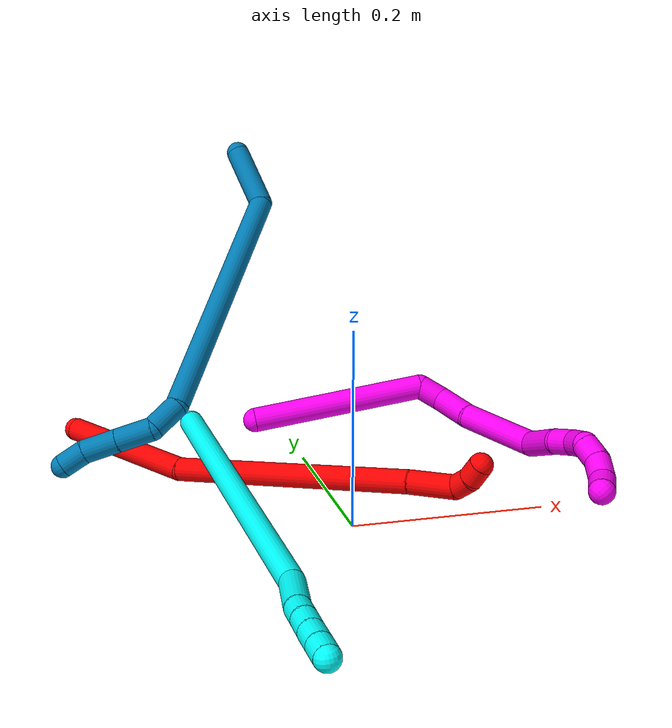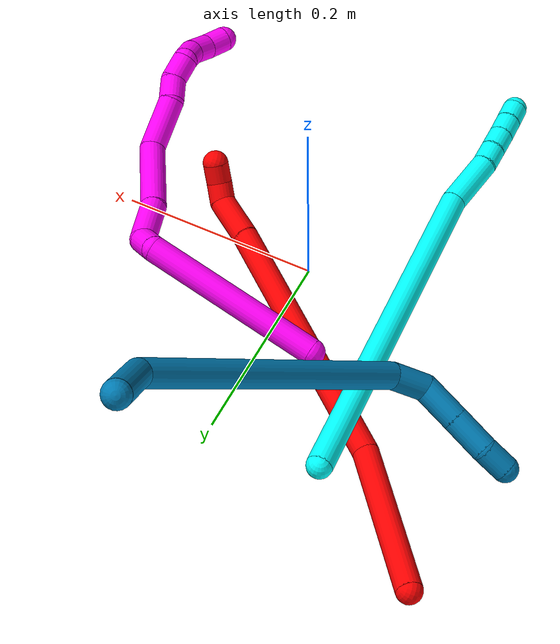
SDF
<sdf version="1.7">
 <world name="default">
  <model name="2">
   <static>0</static>
   <link name="2">
    <collision name="collision-cylinder-e_1_1_4">
     <pose>0.017638 -0.072492 -0.015731 1.78449 0.233444 0.288835</pose>
     <geometry><cylinder><radius>0.0125</radius><length>0.152494</length></cylinder></geometry>
     <surface>
      <friction><ode><mu>1.16</mu><mu2>1.16</mu2><slip1>0</slip1><slip2>0</slip2></ode></friction>
      <contact><ode><kp>1e+06</kp><kd>1</kd><max_vel>0</max_vel><min_depth>0.001</min_depth></ode></contact>
     </surface>
    </collision>
    <visual name="visual-cylinder-e_1_1_4">
     <pose>0.017638 -0.072492 -0.015731 1.78449 0.233444 0.288835</pose>
     <geometry><cylinder><radius>0.0125</radius><length>0.152494</length></cylinder></geometry>
     <material><ambient>1 0 0 1</ambient></material>
    </visual>
    <collision name="collision-cylinder-e_2_4_5">
     <pose>0.066744 -0.254284 -0.093523 2.08719 0.245312 0.417342</pose>
     <geometry><cylinder><radius>0.0125</radius><length>0.25914</length></cylinder></geometry>
     <surface>
      <friction><ode><mu>1.16</mu><mu2>1.16</mu2><slip1>0</slip1><slip2>0</slip2></ode></friction>
      <contact><ode><kp>1e+06</kp><kd>1</kd><max_vel>0</max_vel><min_depth>0.001</min_depth></ode></contact>
     </surface>
    </collision>
    <visual name="visual-cylinder-e_2_4_5">
     <pose>0.066744 -0.254284 -0.093523 2.08719 0.245312 0.417342</pose>
     <geometry><cylinder><radius>0.0125</radius><length>0.25914</length></cylinder></geometry>
     <material><ambient>1 0 0 1</ambient></material>
    </visual>
    <collision name="collision-cylinder-e_3_5_6">
     <pose>0.101898 -0.384398 -0.166992 2.07224 0.154128 0.25931</pose>
     <geometry><cylinder><radius>0.0125</radius><length>0.048039</length></cylinder></geometry>
     <surface>
      <friction><ode><mu>1.16</mu><mu2>1.16</mu2><slip1>0</slip1><slip2>0</slip2></ode></friction>
      <contact><ode><kp>1e+06</kp><kd>1</kd><max_vel>0</max_vel><min_depth>0.001</min_depth></ode></contact>
     </surface>
    </collision>
    <visual name="visual-cylinder-e_3_5_6">
     <pose>0.101898 -0.384398 -0.166992 2.07224 0.154128 0.25931</pose>
     <geometry><cylinder><radius>0.0125</radius><length>0.048039</length></cylinder></geometry>
     <material><ambient>1 0 0 1</ambient></material>
    </visual>
    <collision name="collision-cylinder-e_4_6_7">
     <pose>0.112814 -0.410146 -0.183357 2.3583 0.801827 1.59682</pose>
     <geometry><cylinder><radius>0.0125</radius><length>0.020117</length></cylinder></geometry>
     <surface>
      <friction><ode><mu>1.16</mu><mu2>1.16</mu2><slip1>0</slip1><slip2>0</slip2></ode></friction>
      <contact><ode><kp>1e+06</kp><kd>1</kd><max_vel>0</max_vel><min_depth>0.001</min_depth></ode></contact>
     </surface>
    </collision>
    <visual name="visual-cylinder-e_4_6_7">
     <pose>0.112814 -0.410146 -0.183357 2.3583 0.801827 1.59682</pose>
     <geometry><cylinder><radius>0.0125</radius><length>0.020117</length></cylinder></geometry>
     <material><ambient>1 0 0 1</ambient></material>
    </visual>
    <collision name="collision-cylinder-e_5_7_2">
     <pose>0.128045 -0.416772 -0.194248 2.86421 0.913963 2.58837</pose>
     <geometry><cylinder><radius>0.0125</radius><length>0.02021</length></cylinder></geometry>
     <surface>
      <friction><ode><mu>1.16</mu><mu2>1.16</mu2><slip1>0</slip1><slip2>0</slip2></ode></friction>
      <contact><ode><kp>1e+06</kp><kd>1</kd><max_vel>0</max_vel><min_depth>0.001</min_depth></ode></contact>
     </surface>
    </collision>
    <visual name="visual-cylinder-e_5_7_2">
     <pose>0.128045 -0.416772 -0.194248 2.86421 0.913963 2.58837</pose>
     <geometry><cylinder><radius>0.0125</radius><length>0.02021</length></cylinder></geometry>
     <material><ambient>1 0 0 1</ambient></material>
    </visual>
    <collision name="collision-sphere-2">
     <pose>0.136047 -0.418461 -0.200183 0 -0 0</pose>
     <geometry><sphere><radius>0.0125</radius></sphere></geometry>
     <surface>
      <friction><ode><mu>1.16</mu><mu2>1.16</mu2><slip1>0</slip1><slip2>0</slip2></ode></friction>
      <contact><ode><kp>1e+06</kp><kd>1</kd><max_vel>0</max_vel><min_depth>0.001</min_depth></ode></contact>
     </surface>
    </collision>
    <visual name="visual-sphere-2">
     <pose>0.136047 -0.418461 -0.200183 0 -0 0</pose>
     <geometry><sphere><radius>0.0125</radius></sphere></geometry>
     <material><ambient>1 0 0 1</ambient></material>
    </visual>
    <collision name="collision-sphere-7">
     <pose>0.120042 -0.415082 -0.188314 0 -0 0</pose>
     <geometry><sphere><radius>0.0125</radius></sphere></geometry>
     <surface>
      <friction><ode><mu>1.16</mu><mu2>1.16</mu2><slip1>0</slip1><slip2>0</slip2></ode></friction>
      <contact><ode><kp>1e+06</kp><kd>1</kd><max_vel>0</max_vel><min_depth>0.001</min_depth></ode></contact>
     </surface>
    </collision>
    <visual name="visual-sphere-7">
     <pose>0.120042 -0.415082 -0.188314 0 -0 0</pose>
     <geometry><sphere><radius>0.0125</radius></sphere></geometry>
     <material><ambient>1 0 0 1</ambient></material>
    </visual>
    <collision name="collision-sphere-6">
     <pose>0.105586 -0.405211 -0.178401 0 -0 0</pose>
     <geometry><sphere><radius>0.0125</radius></sphere></geometry>
     <surface>
      <friction><ode><mu>1.16</mu><mu2>1.16</mu2><slip1>0</slip1><slip2>0</slip2></ode></friction>
      <contact><ode><kp>1e+06</kp><kd>1</kd><max_vel>0</max_vel><min_depth>0.001</min_depth></ode></contact>
     </surface>
    </collision>
    <visual name="visual-sphere-6">
     <pose>0.105586 -0.405211 -0.178401 0 -0 0</pose>
     <geometry><sphere><radius>0.0125</radius></sphere></geometry>
     <material><ambient>1 0 0 1</ambient></material>
    </visual>
    <collision name="collision-sphere-5">
     <pose>0.098211 -0.363585 -0.155583 0 -0 0</pose>
     <geometry><sphere><radius>0.0125</radius></sphere></geometry>
     <surface>
      <friction><ode><mu>1.16</mu><mu2>1.16</mu2><slip1>0</slip1><slip2>0</slip2></ode></friction>
      <contact><ode><kp>1e+06</kp><kd>1</kd><max_vel>0</max_vel><min_depth>0.001</min_depth></ode></contact>
     </surface>
    </collision>
    <visual name="visual-sphere-5">
     <pose>0.098211 -0.363585 -0.155583 0 -0 0</pose>
     <geometry><sphere><radius>0.0125</radius></sphere></geometry>
     <material><ambient>1 0 0 1</ambient></material>
    </visual>
    <collision name="collision-sphere-1">
     <geometry><sphere><radius>0.0125</radius></sphere></geometry>
     <surface>
      <friction><ode><mu>1.16</mu><mu2>1.16</mu2><slip1>0</slip1><slip2>0</slip2></ode></friction>
      <contact><ode><kp>1e+06</kp><kd>1</kd><max_vel>0</max_vel><min_depth>0.001</min_depth></ode></contact>
     </surface>
    </collision>
    <visual name="visual-sphere-1">
     <geometry><sphere><radius>0.0125</radius></sphere></geometry>
     <material><ambient>1 0 0 1</ambient></material>
    </visual>
    <collision name="collision-sphere-4">
     <pose>0.035276 -0.144983 -0.031463 0 -0 0</pose>
     <geometry><sphere><radius>0.0125</radius></sphere></geometry>
     <surface>
      <friction><ode><mu>1.16</mu><mu2>1.16</mu2><slip1>0</slip1><slip2>0</slip2></ode></friction>
      <contact><ode><kp>1e+06</kp><kd>1</kd><max_vel>0</max_vel><min_depth>0.001</min_depth></ode></contact>
     </surface>
    </collision>
    <visual name="visual-sphere-4">
     <pose>0.035276 -0.144983 -0.031463 0 -0 0</pose>
     <geometry><sphere><radius>0.0125</radius></sphere></geometry>
     <material><ambient>1 0 0 1</ambient></material>
    </visual>
    <inertial>
     <pose>0.059476 -0.224179 -0.084542 0 -0 0</pose>
     <mass>0.5</mass>
     <inertia>
      <ixx>0.002259</ixx>
      <ixy>0</ixy>
      <ixz>0</ixz>
      <iyy>5.1e-05</iyy>
      <iyz>0</iyz>
      <izz>0.001085</izz>
     </inertia>
    </inertial>
   </link>
   <pose>-0.241098 0.285272 0.025758 2.47153 -0.882997 -1.94375</pose>
  </model>
  <model name="3">
   <static>0</static>
   <link name="3">
    <collision name="collision-cylinder-e_1_1_4">
     <pose>0.024245 -0.174225 -0.030075 1.74173 0.136283 0.161721</pose>
     <geometry><cylinder><radius>0.0125</radius><length>0.356913</length></cylinder></geometry>
     <surface>
      <friction><ode><mu>1.16</mu><mu2>1.16</mu2><slip1>0</slip1><slip2>0</slip2></ode></friction>
      <contact><ode><kp>1e+06</kp><kd>1</kd><max_vel>0</max_vel><min_depth>0.001</min_depth></ode></contact>
     </surface>
    </collision>
    <visual name="visual-cylinder-e_1_1_4">
     <pose>0.024245 -0.174225 -0.030075 1.74173 0.136283 0.161721</pose>
     <geometry><cylinder><radius>0.0125</radius><length>0.356913</length></cylinder></geometry>
     <material><ambient>0.003922 1 0.996078 1</ambient></material>
    </visual>
    <collision name="collision-cylinder-e_2_4_5">
     <pose>0.046368 -0.376927 -0.060038 1.56688 -0.074412 -0.074122</pose>
     <geometry><cylinder><radius>0.0125</radius><length>0.057112</length></cylinder></geometry>
     <surface>
      <friction><ode><mu>1.16</mu><mu2>1.16</mu2><slip1>0</slip1><slip2>0</slip2></ode></friction>
      <contact><ode><kp>1e+06</kp><kd>1</kd><max_vel>0</max_vel><min_depth>0.001</min_depth></ode></contact>
     </surface>
    </collision>
    <visual name="visual-cylinder-e_2_4_5">
     <pose>0.046368 -0.376927 -0.060038 1.56688 -0.074412 -0.074122</pose>
     <geometry><cylinder><radius>0.0125</radius><length>0.057112</length></cylinder></geometry>
     <material><ambient>0.003922 1 0.996078 1</ambient></material>
    </visual>
    <collision name="collision-cylinder-e_3_5_6">
     <pose>0.04512 -0.416145 -0.060348 1.61 0.081192 0.084436</pose>
     <geometry><cylinder><radius>0.0125</radius><length>0.021571</length></cylinder></geometry>
     <surface>
      <friction><ode><mu>1.16</mu><mu2>1.16</mu2><slip1>0</slip1><slip2>0</slip2></ode></friction>
      <contact><ode><kp>1e+06</kp><kd>1</kd><max_vel>0</max_vel><min_depth>0.001</min_depth></ode></contact>
     </surface>
    </collision>
    <visual name="visual-cylinder-e_3_5_6">
     <pose>0.04512 -0.416145 -0.060348 1.61 0.081192 0.084436</pose>
     <geometry><cylinder><radius>0.0125</radius><length>0.021571</length></cylinder></geometry>
     <material><ambient>0.003922 1 0.996078 1</ambient></material>
    </visual>
    <collision name="collision-cylinder-e_4_6_7">
     <pose>0.046984 -0.437783 -0.062034 1.68635 0.089986 0.101017</pose>
     <geometry><cylinder><radius>0.0125</radius><length>0.022029</length></cylinder></geometry>
     <surface>
      <friction><ode><mu>1.16</mu><mu2>1.16</mu2><slip1>0</slip1><slip2>0</slip2></ode></friction>
      <contact><ode><kp>1e+06</kp><kd>1</kd><max_vel>0</max_vel><min_depth>0.001</min_depth></ode></contact>
     </surface>
    </collision>
    <visual name="visual-cylinder-e_4_6_7">
     <pose>0.046984 -0.437783 -0.062034 1.68635 0.089986 0.101017</pose>
     <geometry><cylinder><radius>0.0125</radius><length>0.022029</length></cylinder></geometry>
     <material><ambient>0.003922 1 0.996078 1</ambient></material>
    </visual>
    <collision name="collision-cylinder-e_5_7_8">
     <pose>0.049238 -0.459527 -0.06457 1.6875 0.115217 0.129475</pose>
     <geometry><cylinder><radius>0.0125</radius><length>0.021989</length></cylinder></geometry>
     <surface>
      <friction><ode><mu>1.16</mu><mu2>1.16</mu2><slip1>0</slip1><slip2>0</slip2></ode></friction>
      <contact><ode><kp>1e+06</kp><kd>1</kd><max_vel>0</max_vel><min_depth>0.001</min_depth></ode></contact>
     </surface>
    </collision>
    <visual name="visual-cylinder-e_5_7_8">
     <pose>0.049238 -0.459527 -0.06457 1.6875 0.115217 0.129475</pose>
     <geometry><cylinder><radius>0.0125</radius><length>0.021989</length></cylinder></geometry>
     <material><ambient>0.003922 1 0.996078 1</ambient></material>
    </visual>
    <collision name="collision-cylinder-e_6_8_2">
     <pose>0.05176 -0.480381 -0.067325 1.71794 0.123743 0.143373</pose>
     <geometry><cylinder><radius>0.0125</radius><length>0.020387</length></cylinder></geometry>
     <surface>
      <friction><ode><mu>1.16</mu><mu2>1.16</mu2><slip1>0</slip1><slip2>0</slip2></ode></friction>
      <contact><ode><kp>1e+06</kp><kd>1</kd><max_vel>0</max_vel><min_depth>0.001</min_depth></ode></contact>
     </surface>
    </collision>
    <visual name="visual-cylinder-e_6_8_2">
     <pose>0.05176 -0.480381 -0.067325 1.71794 0.123743 0.143373</pose>
     <geometry><cylinder><radius>0.0125</radius><length>0.020387</length></cylinder></geometry>
     <material><ambient>0.003922 1 0.996078 1</ambient></material>
    </visual>
    <collision name="collision-sphere-2">
     <pose>0.053018 -0.490387 -0.068808 0 -0 0</pose>
     <geometry><sphere><radius>0.0125</radius></sphere></geometry>
     <surface>
      <friction><ode><mu>1.16</mu><mu2>1.16</mu2><slip1>0</slip1><slip2>0</slip2></ode></friction>
      <contact><ode><kp>1e+06</kp><kd>1</kd><max_vel>0</max_vel><min_depth>0.001</min_depth></ode></contact>
     </surface>
    </collision>
    <visual name="visual-sphere-2">
     <pose>0.053018 -0.490387 -0.068808 0 -0 0</pose>
     <geometry><sphere><radius>0.0125</radius></sphere></geometry>
     <material><ambient>0.003922 1 0.996078 1</ambient></material>
    </visual>
    <collision name="collision-sphere-4">
     <pose>0.048491 -0.34845 -0.060149 0 -0 0</pose>
     <geometry><sphere><radius>0.0125</radius></sphere></geometry>
     <surface>
      <friction><ode><mu>1.16</mu><mu2>1.16</mu2><slip1>0</slip1><slip2>0</slip2></ode></friction>
      <contact><ode><kp>1e+06</kp><kd>1</kd><max_vel>0</max_vel><min_depth>0.001</min_depth></ode></contact>
     </surface>
    </collision>
    <visual name="visual-sphere-4">
     <pose>0.048491 -0.34845 -0.060149 0 -0 0</pose>
     <geometry><sphere><radius>0.0125</radius></sphere></geometry>
     <material><ambient>0.003922 1 0.996078 1</ambient></material>
    </visual>
    <collision name="collision-sphere-1">
     <geometry><sphere><radius>0.0125</radius></sphere></geometry>
     <surface>
      <friction><ode><mu>1.16</mu><mu2>1.16</mu2><slip1>0</slip1><slip2>0</slip2></ode></friction>
      <contact><ode><kp>1e+06</kp><kd>1</kd><max_vel>0</max_vel><min_depth>0.001</min_depth></ode></contact>
     </surface>
    </collision>
    <visual name="visual-sphere-1">
     <geometry><sphere><radius>0.0125</radius></sphere></geometry>
     <material><ambient>0.003922 1 0.996078 1</ambient></material>
    </visual>
    <collision name="collision-sphere-8">
     <pose>0.050502 -0.470375 -0.065842 0 -0 0</pose>
     <geometry><sphere><radius>0.0125</radius></sphere></geometry>
     <surface>
      <friction><ode><mu>1.16</mu><mu2>1.16</mu2><slip1>0</slip1><slip2>0</slip2></ode></friction>
      <contact><ode><kp>1e+06</kp><kd>1</kd><max_vel>0</max_vel><min_depth>0.001</min_depth></ode></contact>
     </surface>
    </collision>
    <visual name="visual-sphere-8">
     <pose>0.050502 -0.470375 -0.065842 0 -0 0</pose>
     <geometry><sphere><radius>0.0125</radius></sphere></geometry>
     <material><ambient>0.003922 1 0.996078 1</ambient></material>
    </visual>
    <collision name="collision-sphere-5">
     <pose>0.044245 -0.405404 -0.059926 0 -0 0</pose>
     <geometry><sphere><radius>0.0125</radius></sphere></geometry>
     <surface>
      <friction><ode><mu>1.16</mu><mu2>1.16</mu2><slip1>0</slip1><slip2>0</slip2></ode></friction>
      <contact><ode><kp>1e+06</kp><kd>1</kd><max_vel>0</max_vel><min_depth>0.001</min_depth></ode></contact>
     </surface>
    </collision>
    <visual name="visual-sphere-5">
     <pose>0.044245 -0.405404 -0.059926 0 -0 0</pose>
     <geometry><sphere><radius>0.0125</radius></sphere></geometry>
     <material><ambient>0.003922 1 0.996078 1</ambient></material>
    </visual>
    <collision name="collision-sphere-6">
     <pose>0.045994 -0.426887 -0.060769 0 -0 0</pose>
     <geometry><sphere><radius>0.0125</radius></sphere></geometry>
     <surface>
      <friction><ode><mu>1.16</mu><mu2>1.16</mu2><slip1>0</slip1><slip2>0</slip2></ode></friction>
      <contact><ode><kp>1e+06</kp><kd>1</kd><max_vel>0</max_vel><min_depth>0.001</min_depth></ode></contact>
     </surface>
    </collision>
    <visual name="visual-sphere-6">
     <pose>0.045994 -0.426887 -0.060769 0 -0 0</pose>
     <geometry><sphere><radius>0.0125</radius></sphere></geometry>
     <material><ambient>0.003922 1 0.996078 1</ambient></material>
    </visual>
    <collision name="collision-sphere-7">
     <pose>0.047974 -0.44868 -0.063298 0 -0 0</pose>
     <geometry><sphere><radius>0.0125</radius></sphere></geometry>
     <surface>
      <friction><ode><mu>1.16</mu><mu2>1.16</mu2><slip1>0</slip1><slip2>0</slip2></ode></friction>
      <contact><ode><kp>1e+06</kp><kd>1</kd><max_vel>0</max_vel><min_depth>0.001</min_depth></ode></contact>
     </surface>
    </collision>
    <visual name="visual-sphere-7">
     <pose>0.047974 -0.44868 -0.063298 0 -0 0</pose>
     <geometry><sphere><radius>0.0125</radius></sphere></geometry>
     <material><ambient>0.003922 1 0.996078 1</ambient></material>
    </visual>
    <inertial>
     <pose>0.030896 -0.244457 -0.039247 0 -0 0</pose>
     <mass>0.5</mass>
     <inertia>
      <ixx>0.004353</ixx>
      <ixy>0</ixy>
      <ixz>0</ixz>
      <iyy>1.1e-05</iyy>
      <iyz>0</iyz>
      <izz>0.003216</izz>
     </inertia>
    </inertial>
   </link>
   <pose>-0.121555 0.218895 0.04608 -0.055734 -0.137036 -0.07492</pose>
  </model>
  <model name="9">
   <static>0</static>
   <link name="9">
    <collision name="collision-cylinder-e_1_1_4">
     <pose>-0.000148 -0.007864 -0.035904 2.92597 -0.004029 -0.037225</pose>
     <geometry><cylinder><radius>0.0125</radius><length>0.07351</length></cylinder></geometry>
     <surface>
      <friction><ode><mu>1.16</mu><mu2>1.16</mu2><slip1>0</slip1><slip2>0</slip2></ode></friction>
      <contact><ode><kp>1e+06</kp><kd>1</kd><max_vel>0</max_vel><min_depth>0.001</min_depth></ode></contact>
     </surface>
    </collision>
    <visual name="visual-cylinder-e_1_1_4">
     <pose>-0.000148 -0.007864 -0.035904 2.92597 -0.004029 -0.037225</pose>
     <geometry><cylinder><radius>0.0125</radius><length>0.07351</length></cylinder></geometry>
     <material><ambient>0 0.490196 0.709804 1</ambient></material>
    </visual>
    <collision name="collision-cylinder-e_2_4_5">
     <pose>-0.074481 -0.093251 -0.168352 2.46504 -0.539794 -1.33276</pose>
     <geometry><cylinder><radius>0.0125</radius><length>0.288679</length></cylinder></geometry>
     <surface>
      <friction><ode><mu>1.16</mu><mu2>1.16</mu2><slip1>0</slip1><slip2>0</slip2></ode></friction>
      <contact><ode><kp>1e+06</kp><kd>1</kd><max_vel>0</max_vel><min_depth>0.001</min_depth></ode></contact>
     </surface>
    </collision>
    <visual name="visual-cylinder-e_2_4_5">
     <pose>-0.074481 -0.093251 -0.168352 2.46504 -0.539794 -1.33276</pose>
     <geometry><cylinder><radius>0.0125</radius><length>0.288679</length></cylinder></geometry>
     <material><ambient>0 0.490196 0.709804 1</ambient></material>
    </visual>
    <collision name="collision-cylinder-e_3_5_6">
     <pose>-0.162987 -0.179101 -0.271112 2.21196 -0.943116 -1.58753</pose>
     <geometry><cylinder><radius>0.0125</radius><length>0.03539</length></cylinder></geometry>
     <surface>
      <friction><ode><mu>1.16</mu><mu2>1.16</mu2><slip1>0</slip1><slip2>0</slip2></ode></friction>
      <contact><ode><kp>1e+06</kp><kd>1</kd><max_vel>0</max_vel><min_depth>0.001</min_depth></ode></contact>
     </surface>
    </collision>
    <visual name="visual-cylinder-e_3_5_6">
     <pose>-0.162987 -0.179101 -0.271112 2.21196 -0.943116 -1.58753</pose>
     <geometry><cylinder><radius>0.0125</radius><length>0.03539</length></cylinder></geometry>
     <material><ambient>0 0.490196 0.709804 1</ambient></material>
    </visual>
    <collision name="collision-cylinder-e_4_6_7">
     <pose>-0.196326 -0.189188 -0.274111 0.500601 -1.38038 -0.416068</pose>
     <geometry><cylinder><radius>0.0125</radius><length>0.038734</length></cylinder></geometry>
     <surface>
      <friction><ode><mu>1.16</mu><mu2>1.16</mu2><slip1>0</slip1><slip2>0</slip2></ode></friction>
      <contact><ode><kp>1e+06</kp><kd>1</kd><max_vel>0</max_vel><min_depth>0.001</min_depth></ode></contact>
     </surface>
    </collision>
    <visual name="visual-cylinder-e_4_6_7">
     <pose>-0.196326 -0.189188 -0.274111 0.500601 -1.38038 -0.416068</pose>
     <geometry><cylinder><radius>0.0125</radius><length>0.038734</length></cylinder></geometry>
     <material><ambient>0 0.490196 0.709804 1</ambient></material>
    </visual>
    <collision name="collision-cylinder-e_5_7_8">
     <pose>-0.233608 -0.192495 -0.267756 0.458104 -1.38143 -0.380737</pose>
     <geometry><cylinder><radius>0.0125</radius><length>0.037194</length></cylinder></geometry>
     <surface>
      <friction><ode><mu>1.16</mu><mu2>1.16</mu2><slip1>0</slip1><slip2>0</slip2></ode></friction>
      <contact><ode><kp>1e+06</kp><kd>1</kd><max_vel>0</max_vel><min_depth>0.001</min_depth></ode></contact>
     </surface>
    </collision>
    <visual name="visual-cylinder-e_5_7_8">
     <pose>-0.233608 -0.192495 -0.267756 0.458104 -1.38143 -0.380737</pose>
     <geometry><cylinder><radius>0.0125</radius><length>0.037194</length></cylinder></geometry>
     <material><ambient>0 0.490196 0.709804 1</ambient></material>
    </visual>
    <collision name="collision-cylinder-e_6_8_2">
     <pose>-0.264911 -0.195897 -0.266038 2.22519 -1.3935 -2.07636</pose>
     <geometry><cylinder><radius>0.0125</radius><length>0.026493</length></cylinder></geometry>
     <surface>
      <friction><ode><mu>1.16</mu><mu2>1.16</mu2><slip1>0</slip1><slip2>0</slip2></ode></friction>
      <contact><ode><kp>1e+06</kp><kd>1</kd><max_vel>0</max_vel><min_depth>0.001</min_depth></ode></contact>
     </surface>
    </collision>
    <visual name="visual-cylinder-e_6_8_2">
     <pose>-0.264911 -0.195897 -0.266038 2.22519 -1.3935 -2.07636</pose>
     <geometry><cylinder><radius>0.0125</radius><length>0.026493</length></cylinder></geometry>
     <material><ambient>0 0.490196 0.709804 1</ambient></material>
    </visual>
    <collision name="collision-sphere-2">
     <pose>-0.27795 -0.197751 -0.26746 0 -0 0</pose>
     <geometry><sphere><radius>0.0125</radius></sphere></geometry>
     <surface>
      <friction><ode><mu>1.16</mu><mu2>1.16</mu2><slip1>0</slip1><slip2>0</slip2></ode></friction>
      <contact><ode><kp>1e+06</kp><kd>1</kd><max_vel>0</max_vel><min_depth>0.001</min_depth></ode></contact>
     </surface>
    </collision>
    <visual name="visual-sphere-2">
     <pose>-0.27795 -0.197751 -0.26746 0 -0 0</pose>
     <geometry><sphere><radius>0.0125</radius></sphere></geometry>
     <material><ambient>0 0.490196 0.709804 1</ambient></material>
    </visual>
    <collision name="collision-sphere-4">
     <pose>-0.000296 -0.015728 -0.071807 0 -0 0</pose>
     <geometry><sphere><radius>0.0125</radius></sphere></geometry>
     <surface>
      <friction><ode><mu>1.16</mu><mu2>1.16</mu2><slip1>0</slip1><slip2>0</slip2></ode></friction>
      <contact><ode><kp>1e+06</kp><kd>1</kd><max_vel>0</max_vel><min_depth>0.001</min_depth></ode></contact>
     </surface>
    </collision>
    <visual name="visual-sphere-4">
     <pose>-0.000296 -0.015728 -0.071807 0 -0 0</pose>
     <geometry><sphere><radius>0.0125</radius></sphere></geometry>
     <material><ambient>0 0.490196 0.709804 1</ambient></material>
    </visual>
    <collision name="collision-sphere-1">
     <geometry><sphere><radius>0.0125</radius></sphere></geometry>
     <surface>
      <friction><ode><mu>1.16</mu><mu2>1.16</mu2><slip1>0</slip1><slip2>0</slip2></ode></friction>
      <contact><ode><kp>1e+06</kp><kd>1</kd><max_vel>0</max_vel><min_depth>0.001</min_depth></ode></contact>
     </surface>
    </collision>
    <visual name="visual-sphere-1">
     <geometry><sphere><radius>0.0125</radius></sphere></geometry>
     <material><ambient>0 0.490196 0.709804 1</ambient></material>
    </visual>
    <collision name="collision-sphere-8">
     <pose>-0.251873 -0.194044 -0.264616 0 -0 0</pose>
     <geometry><sphere><radius>0.0125</radius></sphere></geometry>
     <surface>
      <friction><ode><mu>1.16</mu><mu2>1.16</mu2><slip1>0</slip1><slip2>0</slip2></ode></friction>
      <contact><ode><kp>1e+06</kp><kd>1</kd><max_vel>0</max_vel><min_depth>0.001</min_depth></ode></contact>
     </surface>
    </collision>
    <visual name="visual-sphere-8">
     <pose>-0.251873 -0.194044 -0.264616 0 -0 0</pose>
     <geometry><sphere><radius>0.0125</radius></sphere></geometry>
     <material><ambient>0 0.490196 0.709804 1</ambient></material>
    </visual>
    <collision name="collision-sphere-5">
     <pose>-0.148665 -0.170773 -0.264896 0 -0 0</pose>
     <geometry><sphere><radius>0.0125</radius></sphere></geometry>
     <surface>
      <friction><ode><mu>1.16</mu><mu2>1.16</mu2><slip1>0</slip1><slip2>0</slip2></ode></friction>
      <contact><ode><kp>1e+06</kp><kd>1</kd><max_vel>0</max_vel><min_depth>0.001</min_depth></ode></contact>
     </surface>
    </collision>
    <visual name="visual-sphere-5">
     <pose>-0.148665 -0.170773 -0.264896 0 -0 0</pose>
     <geometry><sphere><radius>0.0125</radius></sphere></geometry>
     <material><ambient>0 0.490196 0.709804 1</ambient></material>
    </visual>
    <collision name="collision-sphere-6">
     <pose>-0.177309 -0.187429 -0.277327 0 -0 0</pose>
     <geometry><sphere><radius>0.0125</radius></sphere></geometry>
     <surface>
      <friction><ode><mu>1.16</mu><mu2>1.16</mu2><slip1>0</slip1><slip2>0</slip2></ode></friction>
      <contact><ode><kp>1e+06</kp><kd>1</kd><max_vel>0</max_vel><min_depth>0.001</min_depth></ode></contact>
     </surface>
    </collision>
    <visual name="visual-sphere-6">
     <pose>-0.177309 -0.187429 -0.277327 0 -0 0</pose>
     <geometry><sphere><radius>0.0125</radius></sphere></geometry>
     <material><ambient>0 0.490196 0.709804 1</ambient></material>
    </visual>
    <collision name="collision-sphere-7">
     <pose>-0.215343 -0.190947 -0.270895 0 -0 0</pose>
     <geometry><sphere><radius>0.0125</radius></sphere></geometry>
     <surface>
      <friction><ode><mu>1.16</mu><mu2>1.16</mu2><slip1>0</slip1><slip2>0</slip2></ode></friction>
      <contact><ode><kp>1e+06</kp><kd>1</kd><max_vel>0</max_vel><min_depth>0.001</min_depth></ode></contact>
     </surface>
    </collision>
    <visual name="visual-sphere-7">
     <pose>-0.215343 -0.190947 -0.270895 0 -0 0</pose>
     <geometry><sphere><radius>0.0125</radius></sphere></geometry>
     <material><ambient>0 0.490196 0.709804 1</ambient></material>
    </visual>
    <inertial>
     <pose>-0.101183 -0.107027 -0.176916 0 -0 0</pose>
     <mass>0.5</mass>
     <inertia>
      <ixx>-0.001262</ixx>
      <ixy>0</ixy>
      <ixz>0</ixz>
      <iyy>-0.001459</iyy>
      <iyz>0</iyz>
      <izz>0.002128</izz>
     </inertia>
    </inertial>
   </link>
   <pose>-0.032767 0.377197 0.314763 -0.43768 -0.536053 -0.293251</pose>
  </model>
  <model name="10">
   <static>0</static>
   <link name="10">
    <collision name="collision-cylinder-e_1_1_4">
     <pose>0.044016 -0.00152 0.076756 0.019795 0.520586 0.005272</pose>
     <geometry><cylinder><radius>0.0125</radius><length>0.176989</length></cylinder></geometry>
     <surface>
      <friction><ode><mu>1.16</mu><mu2>1.16</mu2><slip1>0</slip1><slip2>0</slip2></ode></friction>
      <contact><ode><kp>1e+06</kp><kd>1</kd><max_vel>0</max_vel><min_depth>0.001</min_depth></ode></contact>
     </surface>
    </collision>
    <visual name="visual-cylinder-e_1_1_4">
     <pose>0.044016 -0.00152 0.076756 0.019795 0.520586 0.005272</pose>
     <geometry><cylinder><radius>0.0125</radius><length>0.176989</length></cylinder></geometry>
     <material><ambient>1 0 0.964706 1</ambient></material>
    </visual>
    <collision name="collision-cylinder-e_2_4_5">
     <pose>0.10037 -0.005105 0.157355 0.493319 1.23088 0.352358</pose>
     <geometry><cylinder><radius>0.0125</radius><length>0.026173</length></cylinder></geometry>
     <surface>
      <friction><ode><mu>1.16</mu><mu2>1.16</mu2><slip1>0</slip1><slip2>0</slip2></ode></friction>
      <contact><ode><kp>1e+06</kp><kd>1</kd><max_vel>0</max_vel><min_depth>0.001</min_depth></ode></contact>
     </surface>
    </collision>
    <visual name="visual-cylinder-e_2_4_5">
     <pose>0.10037 -0.005105 0.157355 0.493319 1.23088 0.352358</pose>
     <geometry><cylinder><radius>0.0125</radius><length>0.026173</length></cylinder></geometry>
     <material><ambient>1 0 0.964706 1</ambient></material>
    </visual>
    <collision name="collision-cylinder-e_3_5_6">
     <pose>0.126895 -0.025319 0.162778 1.48398 0.661717 0.610119</pose>
     <geometry><cylinder><radius>0.0125</radius><length>0.04618</length></cylinder></geometry>
     <surface>
      <friction><ode><mu>1.16</mu><mu2>1.16</mu2><slip1>0</slip1><slip2>0</slip2></ode></friction>
      <contact><ode><kp>1e+06</kp><kd>1</kd><max_vel>0</max_vel><min_depth>0.001</min_depth></ode></contact>
     </surface>
    </collision>
    <visual name="visual-cylinder-e_3_5_6">
     <pose>0.126895 -0.025319 0.162778 1.48398 0.661717 0.610119</pose>
     <geometry><cylinder><radius>0.0125</radius><length>0.04618</length></cylinder></geometry>
     <material><ambient>1 0 0.964706 1</ambient></material>
    </visual>
    <collision name="collision-cylinder-e_4_6_7">
     <pose>0.16951 -0.070831 0.174651 1.211 0.771359 0.547983</pose>
     <geometry><cylinder><radius>0.0125</radius><length>0.081555</length></cylinder></geometry>
     <surface>
      <friction><ode><mu>1.16</mu><mu2>1.16</mu2><slip1>0</slip1><slip2>0</slip2></ode></friction>
      <contact><ode><kp>1e+06</kp><kd>1</kd><max_vel>0</max_vel><min_depth>0.001</min_depth></ode></contact>
     </surface>
    </collision>
    <visual name="visual-cylinder-e_4_6_7">
     <pose>0.16951 -0.070831 0.174651 1.211 0.771359 0.547983</pose>
     <geometry><cylinder><radius>0.0125</radius><length>0.081555</length></cylinder></geometry>
     <material><ambient>1 0 0.964706 1</ambient></material>
    </visual>
    <collision name="collision-cylinder-e_5_7_8">
     <pose>0.201333 -0.123595 0.189979 1.3751 0.130431 0.107163</pose>
     <geometry><cylinder><radius>0.0125</radius><length>0.052232</length></cylinder></geometry>
     <surface>
      <friction><ode><mu>1.16</mu><mu2>1.16</mu2><slip1>0</slip1><slip2>0</slip2></ode></friction>
      <contact><ode><kp>1e+06</kp><kd>1</kd><max_vel>0</max_vel><min_depth>0.001</min_depth></ode></contact>
     </surface>
    </collision>
    <visual name="visual-cylinder-e_5_7_8">
     <pose>0.201333 -0.123595 0.189979 1.3751 0.130431 0.107163</pose>
     <geometry><cylinder><radius>0.0125</radius><length>0.052232</length></cylinder></geometry>
     <material><ambient>1 0 0.964706 1</ambient></material>
    </visual>
    <collision name="collision-cylinder-e_6_8_9">
     <pose>0.209428 -0.159111 0.199219 1.17686 0.405138 0.272404</pose>
     <geometry><cylinder><radius>0.0125</radius><length>0.02384</length></cylinder></geometry>
     <surface>
      <friction><ode><mu>1.16</mu><mu2>1.16</mu2><slip1>0</slip1><slip2>0</slip2></ode></friction>
      <contact><ode><kp>1e+06</kp><kd>1</kd><max_vel>0</max_vel><min_depth>0.001</min_depth></ode></contact>
     </surface>
    </collision>
    <visual name="visual-cylinder-e_6_8_9">
     <pose>0.209428 -0.159111 0.199219 1.17686 0.405138 0.272404</pose>
     <geometry><cylinder><radius>0.0125</radius><length>0.02384</length></cylinder></geometry>
     <material><ambient>1 0 0.964706 1</ambient></material>
    </visual>
    <collision name="collision-cylinder-e_7_9_10">
     <pose>0.216109 -0.181447 0.203992 1.52439 0.160705 0.153444</pose>
     <geometry><cylinder><radius>0.0125</radius><length>0.024785</length></cylinder></geometry>
     <surface>
      <friction><ode><mu>1.16</mu><mu2>1.16</mu2><slip1>0</slip1><slip2>0</slip2></ode></friction>
      <contact><ode><kp>1e+06</kp><kd>1</kd><max_vel>0</max_vel><min_depth>0.001</min_depth></ode></contact>
     </surface>
    </collision>
    <visual name="visual-cylinder-e_7_9_10">
     <pose>0.216109 -0.181447 0.203992 1.52439 0.160705 0.153444</pose>
     <geometry><cylinder><radius>0.0125</radius><length>0.024785</length></cylinder></geometry>
     <material><ambient>1 0 0.964706 1</ambient></material>
    </visual>
    <collision name="collision-cylinder-e_8_10_11">
     <pose>0.226193 -0.200763 0.202416 1.86404 0.829726 1.07059</pose>
     <geometry><cylinder><radius>0.0125</radius><length>0.021961</length></cylinder></geometry>
     <surface>
      <friction><ode><mu>1.16</mu><mu2>1.16</mu2><slip1>0</slip1><slip2>0</slip2></ode></friction>
      <contact><ode><kp>1e+06</kp><kd>1</kd><max_vel>0</max_vel><min_depth>0.001</min_depth></ode></contact>
     </surface>
    </collision>
    <visual name="visual-cylinder-e_8_10_11">
     <pose>0.226193 -0.200763 0.202416 1.86404 0.829726 1.07059</pose>
     <geometry><cylinder><radius>0.0125</radius><length>0.021961</length></cylinder></geometry>
     <material><ambient>1 0 0.964706 1</ambient></material>
    </visual>
    <collision name="collision-cylinder-e_9_11_12">
     <pose>0.240712 -0.216584 0.194213 2.1779 0.543481 0.979079</pose>
     <geometry><cylinder><radius>0.0125</radius><length>0.024823</length></cylinder></geometry>
     <surface>
      <friction><ode><mu>1.16</mu><mu2>1.16</mu2><slip1>0</slip1><slip2>0</slip2></ode></friction>
      <contact><ode><kp>1e+06</kp><kd>1</kd><max_vel>0</max_vel><min_depth>0.001</min_depth></ode></contact>
     </surface>
    </collision>
    <visual name="visual-cylinder-e_9_11_12">
     <pose>0.240712 -0.216584 0.194213 2.1779 0.543481 0.979079</pose>
     <geometry><cylinder><radius>0.0125</radius><length>0.024823</length></cylinder></geometry>
     <material><ambient>1 0 0.964706 1</ambient></material>
    </visual>
    <collision name="collision-cylinder-e_10_12_2">
     <pose>0.248773 -0.234496 0.182857 2.09372 0.153675 0.264929</pose>
     <geometry><cylinder><radius>0.0125</radius><length>0.021462</length></cylinder></geometry>
     <surface>
      <friction><ode><mu>1.16</mu><mu2>1.16</mu2><slip1>0</slip1><slip2>0</slip2></ode></friction>
      <contact><ode><kp>1e+06</kp><kd>1</kd><max_vel>0</max_vel><min_depth>0.001</min_depth></ode></contact>
     </surface>
    </collision>
    <visual name="visual-cylinder-e_10_12_2">
     <pose>0.248773 -0.234496 0.182857 2.09372 0.153675 0.264929</pose>
     <geometry><cylinder><radius>0.0125</radius><length>0.021462</length></cylinder></geometry>
     <material><ambient>1 0 0.964706 1</ambient></material>
    </visual>
    <collision name="collision-sphere-2">
     <pose>0.250416 -0.243684 0.177561 0 -0 0</pose>
     <geometry><sphere><radius>0.0125</radius></sphere></geometry>
     <surface>
      <friction><ode><mu>1.16</mu><mu2>1.16</mu2><slip1>0</slip1><slip2>0</slip2></ode></friction>
      <contact><ode><kp>1e+06</kp><kd>1</kd><max_vel>0</max_vel><min_depth>0.001</min_depth></ode></contact>
     </surface>
    </collision>
    <visual name="visual-sphere-2">
     <pose>0.250416 -0.243684 0.177561 0 -0 0</pose>
     <geometry><sphere><radius>0.0125</radius></sphere></geometry>
     <material><ambient>1 0 0.964706 1</ambient></material>
    </visual>
    <collision name="collision-sphere-12">
     <pose>0.24713 -0.225309 0.188153 0 -0 0</pose>
     <geometry><sphere><radius>0.0125</radius></sphere></geometry>
     <surface>
      <friction><ode><mu>1.16</mu><mu2>1.16</mu2><slip1>0</slip1><slip2>0</slip2></ode></friction>
      <contact><ode><kp>1e+06</kp><kd>1</kd><max_vel>0</max_vel><min_depth>0.001</min_depth></ode></contact>
     </surface>
    </collision>
    <visual name="visual-sphere-12">
     <pose>0.24713 -0.225309 0.188153 0 -0 0</pose>
     <geometry><sphere><radius>0.0125</radius></sphere></geometry>
     <material><ambient>1 0 0.964706 1</ambient></material>
    </visual>
    <collision name="collision-sphere-11">
     <pose>0.234294 -0.20786 0.200274 0 -0 0</pose>
     <geometry><sphere><radius>0.0125</radius></sphere></geometry>
     <surface>
      <friction><ode><mu>1.16</mu><mu2>1.16</mu2><slip1>0</slip1><slip2>0</slip2></ode></friction>
      <contact><ode><kp>1e+06</kp><kd>1</kd><max_vel>0</max_vel><min_depth>0.001</min_depth></ode></contact>
     </surface>
    </collision>
    <visual name="visual-sphere-11">
     <pose>0.234294 -0.20786 0.200274 0 -0 0</pose>
     <geometry><sphere><radius>0.0125</radius></sphere></geometry>
     <material><ambient>1 0 0.964706 1</ambient></material>
    </visual>
    <collision name="collision-sphere-10">
     <pose>0.218092 -0.193667 0.204559 0 -0 0</pose>
     <geometry><sphere><radius>0.0125</radius></sphere></geometry>
     <surface>
      <friction><ode><mu>1.16</mu><mu2>1.16</mu2><slip1>0</slip1><slip2>0</slip2></ode></friction>
      <contact><ode><kp>1e+06</kp><kd>1</kd><max_vel>0</max_vel><min_depth>0.001</min_depth></ode></contact>
     </surface>
    </collision>
    <visual name="visual-sphere-10">
     <pose>0.218092 -0.193667 0.204559 0 -0 0</pose>
     <geometry><sphere><radius>0.0125</radius></sphere></geometry>
     <material><ambient>1 0 0.964706 1</ambient></material>
    </visual>
    <collision name="collision-sphere-9">
     <pose>0.214126 -0.169227 0.203424 0 -0 0</pose>
     <geometry><sphere><radius>0.0125</radius></sphere></geometry>
     <surface>
      <friction><ode><mu>1.16</mu><mu2>1.16</mu2><slip1>0</slip1><slip2>0</slip2></ode></friction>
      <contact><ode><kp>1e+06</kp><kd>1</kd><max_vel>0</max_vel><min_depth>0.001</min_depth></ode></contact>
     </surface>
    </collision>
    <visual name="visual-sphere-9">
     <pose>0.214126 -0.169227 0.203424 0 -0 0</pose>
     <geometry><sphere><radius>0.0125</radius></sphere></geometry>
     <material><ambient>1 0 0.964706 1</ambient></material>
    </visual>
    <collision name="collision-sphere-4">
     <pose>0.088032 -0.003039 0.153513 0 -0 0</pose>
     <geometry><sphere><radius>0.0125</radius></sphere></geometry>
     <surface>
      <friction><ode><mu>1.16</mu><mu2>1.16</mu2><slip1>0</slip1><slip2>0</slip2></ode></friction>
      <contact><ode><kp>1e+06</kp><kd>1</kd><max_vel>0</max_vel><min_depth>0.001</min_depth></ode></contact>
     </surface>
    </collision>
    <visual name="visual-sphere-4">
     <pose>0.088032 -0.003039 0.153513 0 -0 0</pose>
     <geometry><sphere><radius>0.0125</radius></sphere></geometry>
     <material><ambient>1 0 0.964706 1</ambient></material>
    </visual>
    <collision name="collision-sphere-1">
     <geometry><sphere><radius>0.0125</radius></sphere></geometry>
     <surface>
      <friction><ode><mu>1.16</mu><mu2>1.16</mu2><slip1>0</slip1><slip2>0</slip2></ode></friction>
      <contact><ode><kp>1e+06</kp><kd>1</kd><max_vel>0</max_vel><min_depth>0.001</min_depth></ode></contact>
     </surface>
    </collision>
    <visual name="visual-sphere-1">
     <geometry><sphere><radius>0.0125</radius></sphere></geometry>
     <material><ambient>1 0 0.964706 1</ambient></material>
    </visual>
    <collision name="collision-sphere-8">
     <pose>0.20473 -0.148995 0.195014 0 -0 0</pose>
     <geometry><sphere><radius>0.0125</radius></sphere></geometry>
     <surface>
      <friction><ode><mu>1.16</mu><mu2>1.16</mu2><slip1>0</slip1><slip2>0</slip2></ode></friction>
      <contact><ode><kp>1e+06</kp><kd>1</kd><max_vel>0</max_vel><min_depth>0.001</min_depth></ode></contact>
     </surface>
    </collision>
    <visual name="visual-sphere-8">
     <pose>0.20473 -0.148995 0.195014 0 -0 0</pose>
     <geometry><sphere><radius>0.0125</radius></sphere></geometry>
     <material><ambient>1 0 0.964706 1</ambient></material>
    </visual>
    <collision name="collision-sphere-5">
     <pose>0.112707 -0.007171 0.161198 0 -0 0</pose>
     <geometry><sphere><radius>0.0125</radius></sphere></geometry>
     <surface>
      <friction><ode><mu>1.16</mu><mu2>1.16</mu2><slip1>0</slip1><slip2>0</slip2></ode></friction>
      <contact><ode><kp>1e+06</kp><kd>1</kd><max_vel>0</max_vel><min_depth>0.001</min_depth></ode></contact>
     </surface>
    </collision>
    <visual name="visual-sphere-5">
     <pose>0.112707 -0.007171 0.161198 0 -0 0</pose>
     <geometry><sphere><radius>0.0125</radius></sphere></geometry>
     <material><ambient>1 0 0.964706 1</ambient></material>
    </visual>
    <collision name="collision-sphere-6">
     <pose>0.141084 -0.043467 0.164357 0 -0 0</pose>
     <geometry><sphere><radius>0.0125</radius></sphere></geometry>
     <surface>
      <friction><ode><mu>1.16</mu><mu2>1.16</mu2><slip1>0</slip1><slip2>0</slip2></ode></friction>
      <contact><ode><kp>1e+06</kp><kd>1</kd><max_vel>0</max_vel><min_depth>0.001</min_depth></ode></contact>
     </surface>
    </collision>
    <visual name="visual-sphere-6">
     <pose>0.141084 -0.043467 0.164357 0 -0 0</pose>
     <geometry><sphere><radius>0.0125</radius></sphere></geometry>
     <material><ambient>1 0 0.964706 1</ambient></material>
    </visual>
    <collision name="collision-sphere-7">
     <pose>0.197937 -0.098195 0.184944 0 -0 0</pose>
     <geometry><sphere><radius>0.0125</radius></sphere></geometry>
     <surface>
      <friction><ode><mu>1.16</mu><mu2>1.16</mu2><slip1>0</slip1><slip2>0</slip2></ode></friction>
      <contact><ode><kp>1e+06</kp><kd>1</kd><max_vel>0</max_vel><min_depth>0.001</min_depth></ode></contact>
     </surface>
    </collision>
    <visual name="visual-sphere-7">
     <pose>0.197937 -0.098195 0.184944 0 -0 0</pose>
     <geometry><sphere><radius>0.0125</radius></sphere></geometry>
     <material><ambient>1 0 0.964706 1</ambient></material>
    </visual>
    <inertial>
     <pose>0.134497 -0.073825 0.144767 0 -0 0</pose>
     <mass>0.5</mass>
     <inertia>
      <ixx>0.000515</ixx>
      <ixy>0</ixy>
      <ixz>0</ixz>
      <iyy>0.000522</iyy>
      <iyz>0</iyz>
      <izz>-0.000197</izz>
     </inertia>
    </inertial>
   </link>
   <pose>-0.069096 0.130054 0.073579 -0.533631 0.805946 -0.562285</pose>
  </model>
 </world>
</sdf>
